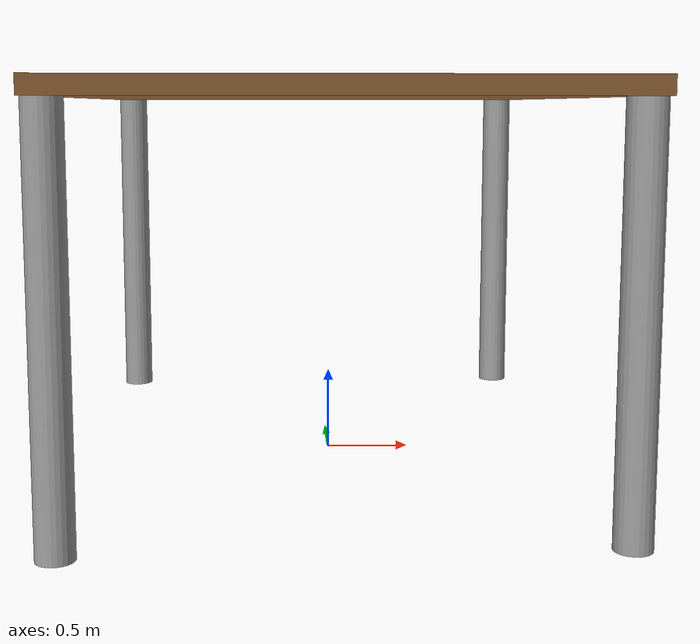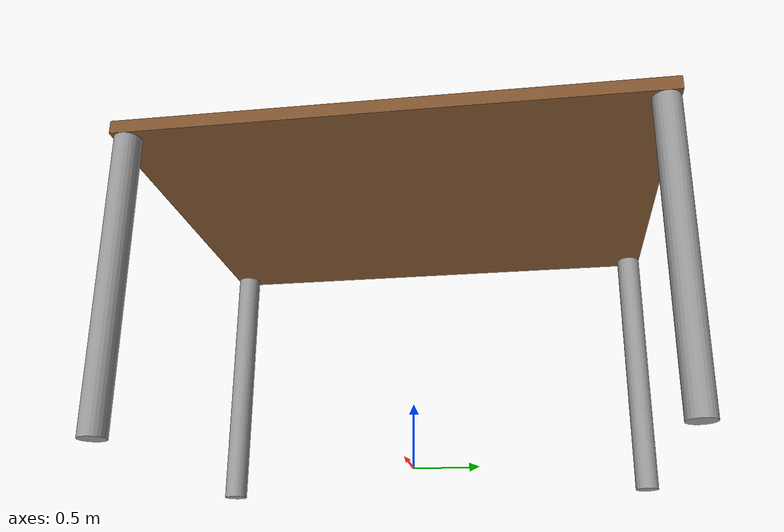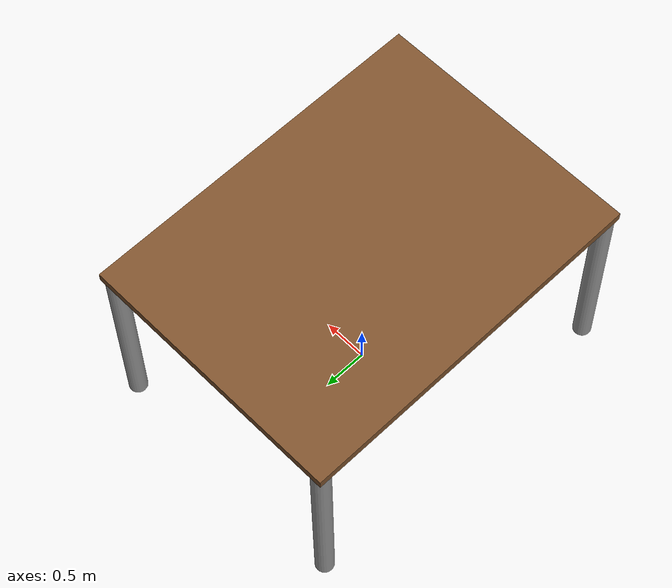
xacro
<?xml version="1.0" encoding="UTF-8"?>
<robot xmlns:xacro="http://wiki.ros.org/xacro" name="table">

  <!-- copy and paste the contents of "rrbot_macro.xacro" here -->
  <xacro:include filename="materials.xacro" />
  <xacro:include filename="table_macro.xacro"/>

  <!-- create link fixed to the "world" -->
  <link name="world" />

  <!-- create the first robot -->
  <xacro:table prefix="table" parent="world">
    <!-- position robot in the world -->
    <origin xyz="0 0 0" rpy="0 0 0" />
  </xacro:table>

  <!-- create the second robot -->
  <!--xacro:rrbot prefix="rrbot2_" parent="world"-->
    <!-- position robot in the world -->
    <!--origin xyz="3 0 0" rpy="0 0 ${degrees(180)}" /-->
  <!--/xacro:rrbot-->

</robot>

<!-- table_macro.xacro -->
<robot xmlns:xacro="http://www.ros.org/wiki/xacro">

<!-- File-level so both macros can see them -->
<xacro:property name="table_length" value="4.0" />
<xacro:property name="table_width" value="3.0" />
<xacro:property name="table_height" value="2.3" />
<xacro:property name="table_thickness" value="0.1" />
<xacro:property name="leg_radius" value="0.1" />
<xacro:property name="leg_length" value="${table_height - table_thickness}" />
<xacro:property name="leg_x" value="${table_width/2 - leg_radius}" />
<xacro:property name="leg_y" value="${table_length/2 - leg_radius}" />

<xacro:macro name="table_leg" params="prefix name x y">
  <joint name="${prefix}${name}_joint" type="fixed">
    <parent link="${prefix}base_link" />
    <child link="${prefix}${name}_link" />
    <origin xyz="${x} ${y} 0" rpy="0 0 0" />
  </joint>
  <link name="${prefix}${name}_link">
    <visual>
      <origin xyz="0 0 ${leg_length/2}" rpy="0 0 0" />
      <geometry>
        <cylinder radius="${leg_radius}" length="${leg_length}" />
      </geometry>
      <material name="grey" />
    </visual>
  </link>
</xacro:macro>

<xacro:macro name="table" params="prefix parent *origin">
  <joint name="${prefix}world_joint" type="fixed">
    <xacro:insert_block name="origin" />
    <parent link="${parent}" />
    <child link="${prefix}base_link" />
  </joint>

  <link name="${prefix}base_link">
    <visual>
      <origin xyz="0 0 ${table_height - table_thickness/2}" rpy="0 0 0" />
      <geometry>
        <box size="${table_width} ${table_length} ${table_thickness}" />
      </geometry>
      <material name="brown" />
    </visual>
  </link>

  <xacro:table_leg prefix="${prefix}" name="leg1" x="${leg_x}"  y="${leg_y}" />
  <xacro:table_leg prefix="${prefix}" name="leg2" x="${-leg_x}" y="${leg_y}" />
  <xacro:table_leg prefix="${prefix}" name="leg3" x="${leg_x}"  y="${-leg_y}" />
  <xacro:table_leg prefix="${prefix}" name="leg4" x="${-leg_x}" y="${-leg_y}" />
</xacro:macro>

</robot>
